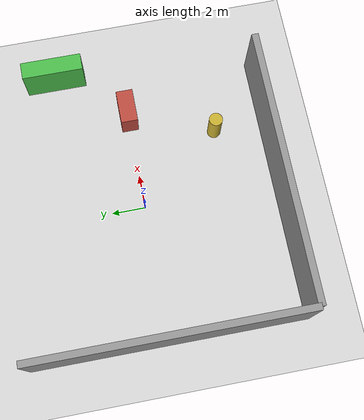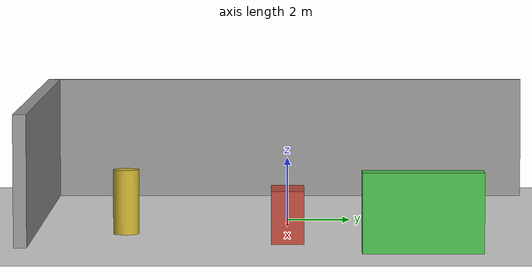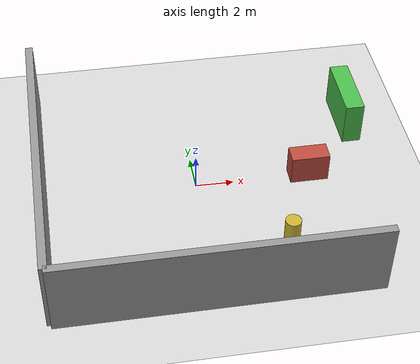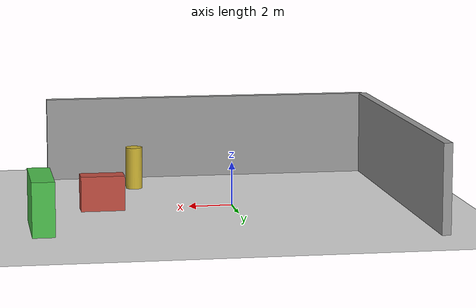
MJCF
<!-- LingTu MuJoCo open field. Robot and sensor instances are attached by the
     session runtime; this WorldPackage owns environment geometry only. -->
<mujoco model="open_field">
  <compiler angle="radian" autolimits="true"/>
  <option gravity="0 0 -9.81" timestep="0.002" integrator="RK4" solver="Newton" iterations="100"/>

  <asset>
    <texture name="grid" type="2d" builtin="checker"
             rgb1=".92 .92 .92" rgb2=".78 .78 .78" width="512" height="512"/>
    <material name="grid_mat"  texture="grid" texrepeat="10 10" reflectance="0.05"/>
    <material name="obs_mat"   rgba=".75 .3 .25 1"/>
  </asset>

  <worldbody>
    <!-- 地面 -->
    <geom name="floor" type="plane" size="80 80 0.1"
          material="grid_mat" conaffinity="1" condim="3"/>

    <!-- 测试障碍物（用于验证 LiDAR 命中）-->
    <geom name="box1"  type="box"      size="1.0 0.5 0.8" pos=" 6  0  0.8" material="obs_mat" conaffinity="1"/>
    <geom name="box2"  type="box"      size="0.5 1.8 1.2" pos=" 9  4  1.2" rgba=".3 .75 .3 1" conaffinity="1"/>
    <geom name="cyl1"  type="cylinder" size="0.4 1.0"     pos=" 4 -5  1.0" rgba=".8 .7 .2 1"  conaffinity="1"/>
    <geom name="wall1" type="box"      size="0.2 8.0 2.0" pos="-8  0  2.0" rgba=".6 .6 .6 1"  conaffinity="1"/>
    <geom name="wall2" type="box"      size="8.0 0.2 2.0" pos=" 0 -8  2.0" rgba=".6 .6 .6 1"  conaffinity="1"/>

    <!-- 光源 -->
    <light name="sun"  pos="0 0 30" dir="0 0 -1"    diffuse=".85 .85 .85" specular=".2 .2 .2"/>
    <light name="fill" pos="5 5 15" dir="-1 -1 -0.5" diffuse=".3 .3 .3"/>
  </worldbody>

</mujoco>
